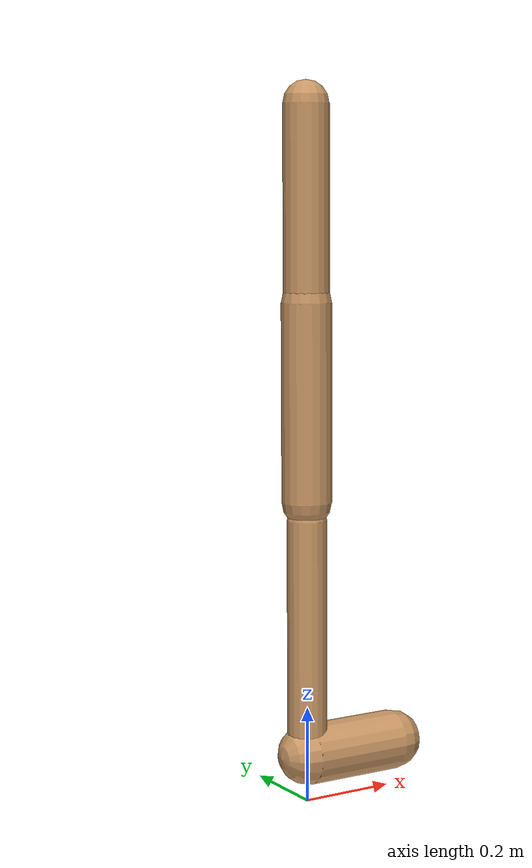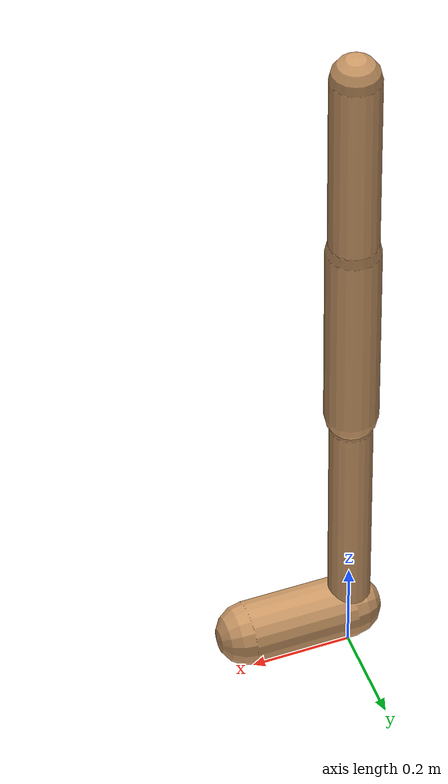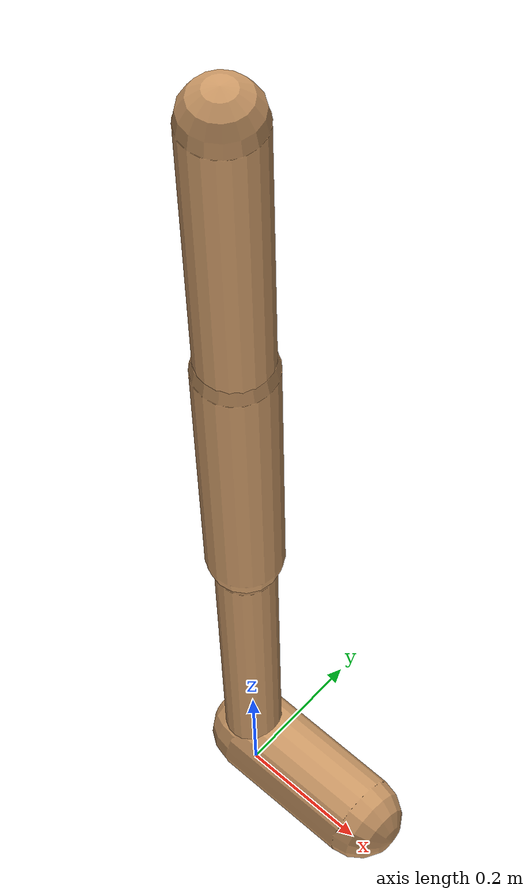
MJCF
<mujoco model="walker2d">
  <compiler angle="degree" coordinate="global" inertiafromgeom="true" />
  <default>
    <joint armature="0.01" damping=".1" limited="true" />
    <geom conaffinity="0" condim="3" contype="1" density="1000" friction="0.8 .1 .1" rgba="0.8 0.6 .4 1" />
  </default>
  <option integrator="RK4" timestep="0.002" />
  <worldbody>

    <body name="torso" pos="0 0 -0.08032332109867606">
      <joint armature="0" axis="1 0 0" damping="0" limited="false" name="ignorex" pos="0 0 0" stiffness="0" type="slide" />
      <joint armature="0" axis="0 0 1" damping="0" limited="false" name="ignorez" pos="0 0 0" ref="1.25" stiffness="0" type="slide" />
      <joint armature="0" axis="0 1 0" damping="0" limited="false" name="ignorey" pos="0 0 0" stiffness="0" type="hinge" />
      <geom fromto="0 0 1.45 0 0 1.05" name="torso_geom" size="0.04773920337854689" type="capsule" />
      <body name="thigh">
        <joint axis="0 -1 0" name="thigh_joint" pos="0 0 1.05" range="-150 0" type="hinge" />
        <geom fromto="0.0 0.0 1.05 0.0 0.0 0.6380478889414781" name="thigh_geom" size="0.052374658489327854" type="capsule" />
        <body name="leg" pos="0.0 0.0 0.03804788894147815">
          <joint axis="0 -1 0" name="leg_joint" pos="0 0 0.6" range="-150 0" type="hinge" />
          <geom fromto="0.0 0.0 0.6 0.0 0.0 0.14227543215719793" name="leg_geom" size="0.04189972679146228" type="capsule" />
          <body name="foot" pos="0.0 0.0 0.04227543215719792">
            <joint axis="0 -1 0" name="foot_joint" pos="0 0 0.1" range="-45 45" type="hinge" />
            <geom fromto="-0.0 0.0 0.1 0.21164349482938696 0.0 0.1" name="foot_geom" size="0.06324945463887993" type="capsule" />
          </body>
        </body>
      </body>

      <body name="thigh_left">
        <joint axis="0 -1 0" name="thigh_left_joint" pos="0 0 1.05" range="-150 0" type="hinge" />
        <geom fromto="0.0 0.0 1.05 0.0 0.0 0.6380478889414781" name="thigh_left_geom" rgba=".7 .3 .6 1" size="0.052374658489327854" type="capsule" />
        <body name="leg_left" pos="0.0 0.0 0.03804788894147815">
          <joint axis="0 -1 0" name="leg_left_joint" pos="0 0 0.6" range="-150 0" type="hinge" />
          <geom fromto="0.0 0.0 0.6 0.0 0.0 0.14227543215719793" name="leg_left_geom" rgba=".7 .3 .6 1" size="0.04189972679146228" type="capsule" />
          <body name="foot_left" pos="0.0 0.0 0.04227543215719792">
            <joint axis="0 -1 0" name="foot_left_joint" pos="0 0 0.1" range="-45 45" type="hinge" />
            <geom fromto="-0.0 0.0 0.1 0.21164349482938696 0.0 0.1" name="foot_left_geom" rgba=".7 .3 .6 1" size="0.06324945463887993" type="capsule" />
          </body>
        </body>
      </body>
    </body>
  </worldbody>
  <actuator>

    <motor ctrllimited="true" ctrlrange="-1.0 1.0" gear="100" joint="thigh_joint" />
    <motor ctrllimited="true" ctrlrange="-1.0 1.0" gear="100" joint="leg_joint" />
    <motor ctrllimited="true" ctrlrange="-1.0 1.0" gear="100" joint="foot_joint" />
    <motor ctrllimited="true" ctrlrange="-1.0 1.0" gear="100" joint="thigh_left_joint" />
    <motor ctrllimited="true" ctrlrange="-1.0 1.0" gear="100" joint="leg_left_joint" />
    <motor ctrllimited="true" ctrlrange="-1.0 1.0" gear="100" joint="foot_left_joint" />

  </actuator>
</mujoco>
